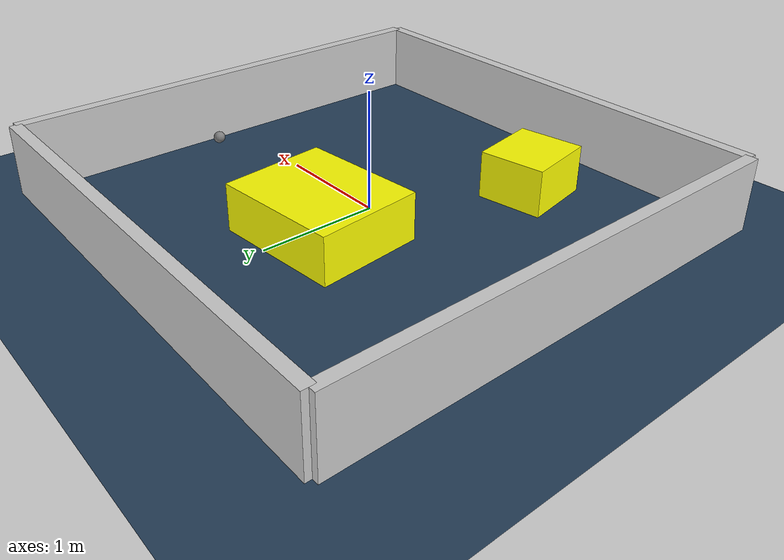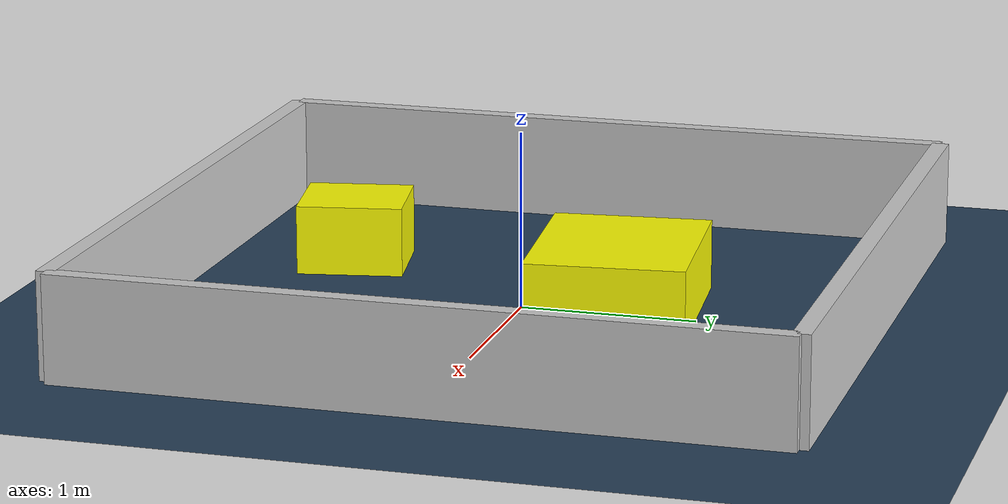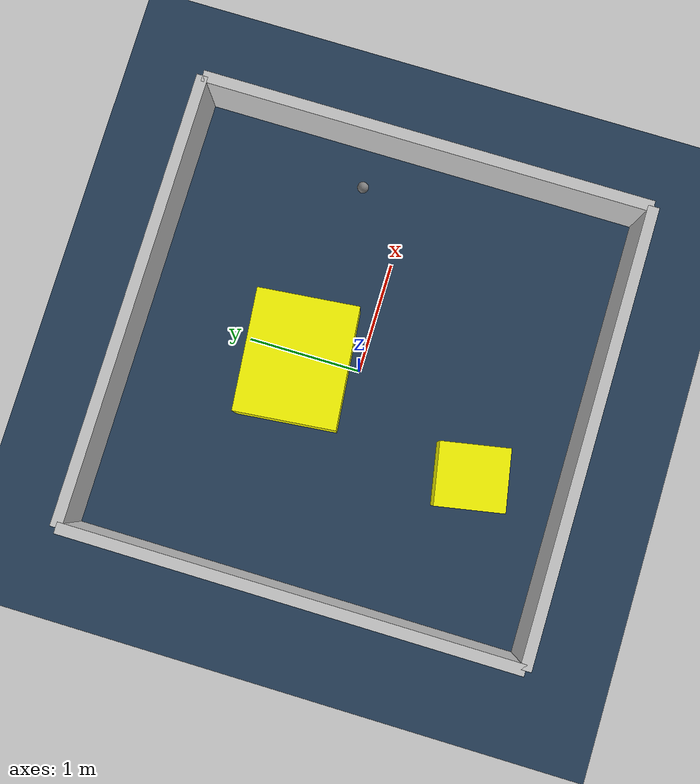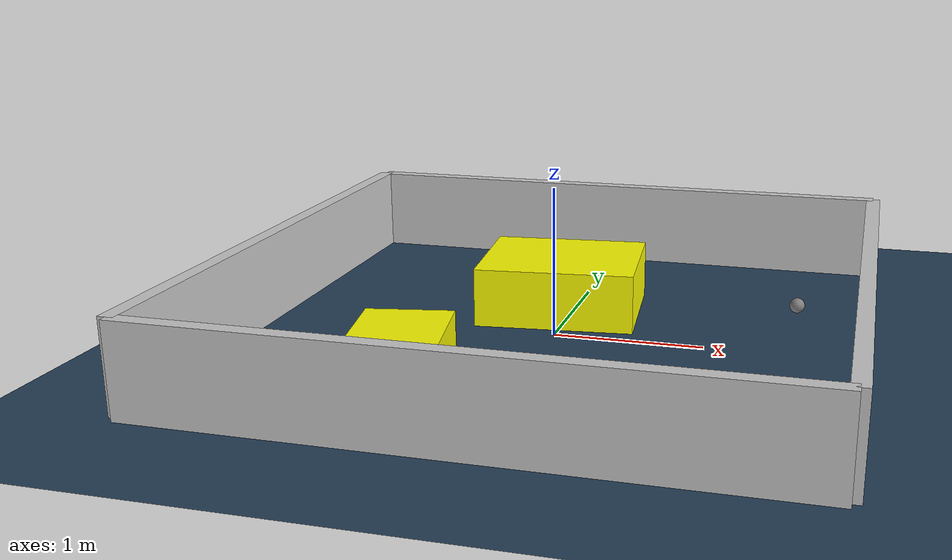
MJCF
<?xml version="1.0" ?>
<mujoco model="generated_environment">
  <option timestep="0.01" integrator="RK4" cone="elliptic"/>
  <default>
    <geom density="1"/>
  </default>
  <asset>
    <texture builtin="gradient" height="3072" rgb1="0.3 0.5 0.7" rgb2="0 0 0" type="skybox" width="512"/>
    <texture builtin="checker" height="300" mark="edge" markrgb="0.8 0.8 0.8" name="groundplane" rgb1="0.2 0.3 0.4" rgb2="0.1 0.2 0.3" type="2d" width="300"/>
    <material name="groundplane" reflectance="0.2" texrepeat="5 5" texture="groundplane" texuniform="true"/>
    <material name="robot" rgba="0.0 1.0 0.0 1"/>
  </asset>
  <worldbody>
    <light dir="0 0 -1" directional="true" pos="0 0 1.5"/>
    <geom condim="4" friction="1.0 0.005 0.001" material="groundplane" name="floor" size="0 0 0.05" type="plane"/>
    <body name="walls">
      <geom name="wall_1" condim="4" pos="-2.0 0.0 0.3" rgba="0.800000011920929 0.800000011920929 0.800000011920929 1.0" size="0.05 2.0 0.3" type="box"/>
      <geom name="wall_2" condim="4" pos="2.0 0.0 0.3" rgba="0.800000011920929 0.800000011920929 0.800000011920929 1.0" size="0.05 2.0 0.3" type="box"/>
      <geom name="wall_3" condim="4" pos="0.0 -2.0 0.3" rgba="0.800000011920929 0.800000011920929 0.800000011920929 1.0" size="2.0 0.05 0.3" type="box"/>
      <geom name="wall_4" condim="4" pos="0.0 2.0 0.3" rgba="0.800000011920929 0.800000011920929 0.800000011920929 1.0" size="2.0 0.05 0.3" type="box"/>
    </body>
    <body name="robot">
      <joint name="joint_x" type="slide" pos="0 0 0" axis="1 0 0"/>
      <joint name="joint_y" type="slide" pos="0 0 0" axis="0 1 0"/>
      <geom name="robot" type="sphere" pos="1.5596339708820497 0.43304981470015 0.2" size="0.05" mass="5." friction="1.0 0.005 0.0001" condim="4"/>
      <site name="sensor_ball"/>
    </body>
    <body name="obstacle_1_movable">
      <geom name="obstacle_1_movable" condim="4" pos="-0.08093456133953025 0.5360835674579465 0.2" euler="0 0 5.632378508508822" friction="1.0 0.005 0.001" rgba="1 1 0 1" size="0.5413251421842553 0.45052867527428375 0.2" type="box" mass="0.1"/>
      <joint type="free"/>
    </body>
    <body name="obstacle_2_movable">
      <geom name="obstacle_2_movable" condim="4" pos="-0.6172074747522409 -1.179815911598395 0.2" euler="0 0 100.37547590640318" friction="1.0 0.005 0.001" rgba="1 1 0 1" size="0.3052897896924292 0.2756930503364337 0.2" type="box" mass="0.1"/>
      <joint type="free"/>
    </body>
  </worldbody>
  <actuator>
    <motor name="actuator_x" joint="joint_x" gear="1" ctrlrange="-1 1"/>
    <motor name="actuator_y" joint="joint_y" gear="1" ctrlrange="-1 1"/>
  </actuator>
</mujoco>
